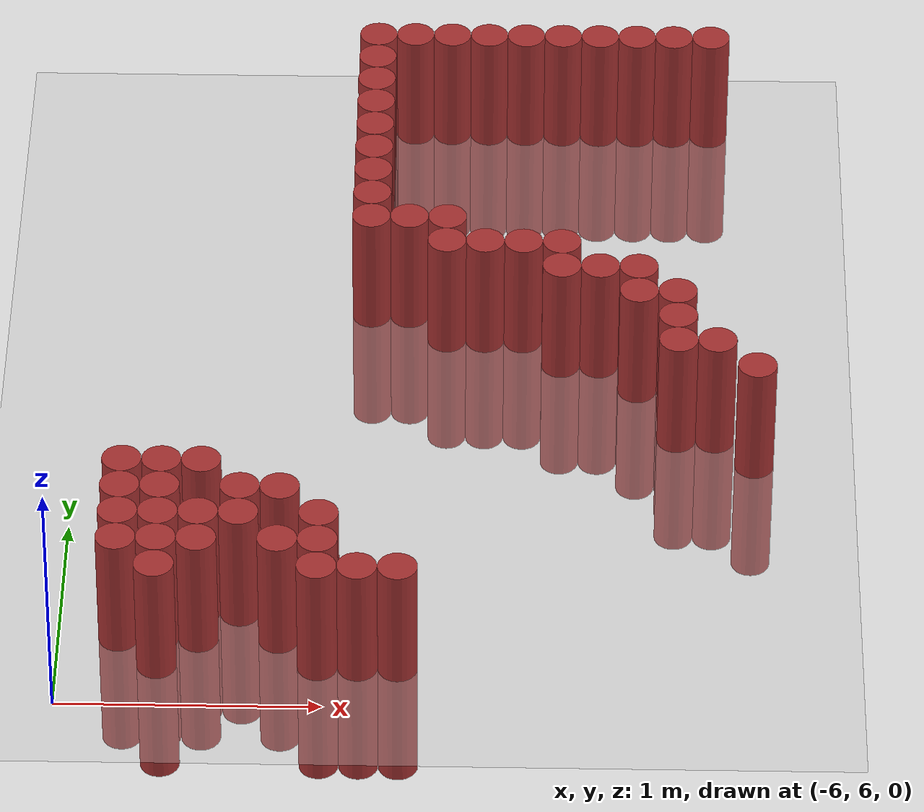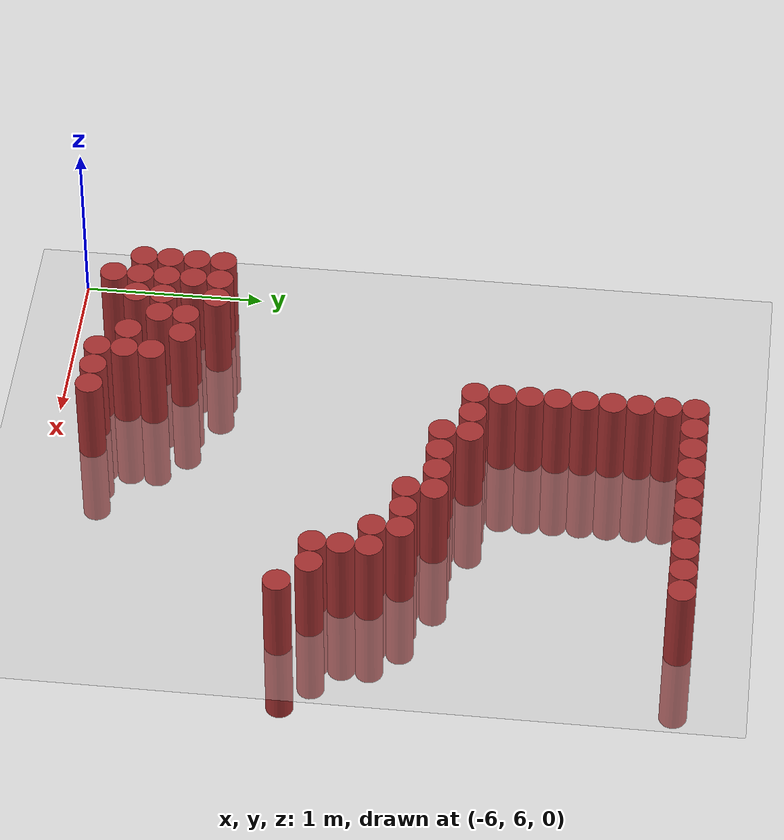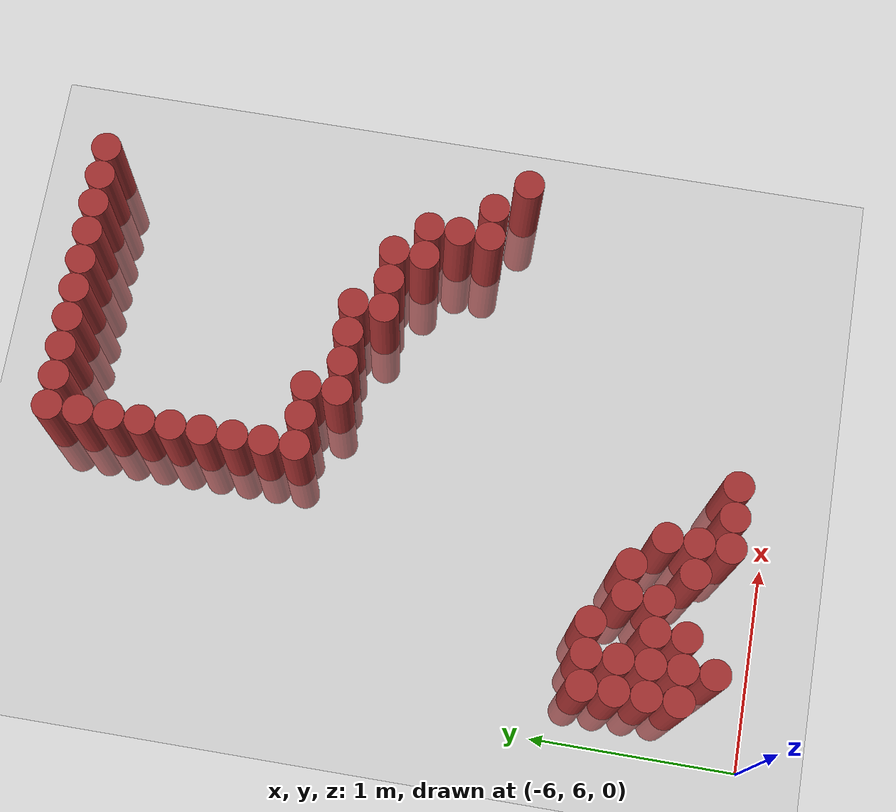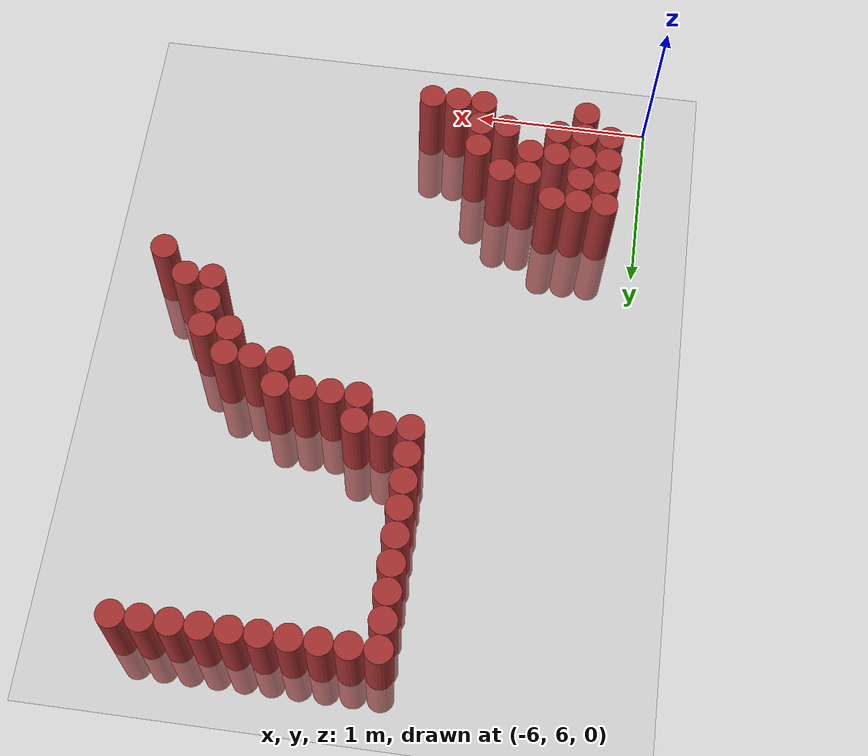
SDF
<sdf version="1.6">
 <world name="default">
  <model name="ground_plane">
   <static>1</static>
   <link name="link">
    <collision name="collision">
     <geometry><plane><normal>0 0 1</normal><size>100 100</size></plane></geometry>
     <surface><friction><ode><mu>100</mu><mu2>50</mu2></ode></friction></surface>
    </collision>
    <visual name="visual">
     <cast_shadows>0</cast_shadows>
     <geometry><plane><normal>0 0 1</normal><size>100 100</size></plane></geometry>
     <material>
      <script><uri>file://media/materials/scripts/gazebo.material</uri><name>Gazebo/Grey</name></script>
     </material>
    </visual>
   </link>
  </model>
  <model name="unit_cylinder_265">
   <static>1</static>
   <pose>-5.775000 6.375000 0.000000 0.000000 0.000000 0.000000</pose>
   <link name="link">
    <inertial>
     <mass>1</mass>
     <inertia><ixx>0.145833</ixx><ixy>0</ixy><ixz>0</ixz><iyy>0.145833</iyy><iyz>0</iyz><izz>0.125</izz></inertia>
    </inertial>
    <collision name="collision">
     <geometry><cylinder><radius>0.075000</radius><length>1</length></cylinder></geometry>
    </collision>
    <visual name="visual">
     <geometry><cylinder><radius>0.075000</radius><length>1</length></cylinder></geometry>
     <material>
      <ambient>0.648000 0.192000 0.192000 1</ambient>
      <diffuse>0.648000 0.192000 0.192000 1</diffuse>
     </material>
     <material>
      <script><name>Gazebo/Grey</name><uri>file://media/materials/scripts/gazebo.material</uri></script>
     </material>
    </visual>
   </link>
  </model>
  <model name="unit_cylinder_266">
   <static>1</static>
   <pose>-5.775000 6.525000 0.000000 0.000000 0.000000 0.000000</pose>
   <link name="link">
    <inertial>
     <mass>1</mass>
     <inertia><ixx>0.145833</ixx><ixy>0</ixy><ixz>0</ixz><iyy>0.145833</iyy><iyz>0</iyz><izz>0.125</izz></inertia>
    </inertial>
    <collision name="collision">
     <geometry><cylinder><radius>0.075000</radius><length>1</length></cylinder></geometry>
    </collision>
    <visual name="visual">
     <geometry><cylinder><radius>0.075000</radius><length>1</length></cylinder></geometry>
     <material>
      <ambient>0.648000 0.192000 0.192000 1</ambient>
      <diffuse>0.648000 0.192000 0.192000 1</diffuse>
     </material>
     <material>
      <script><name>Gazebo/Grey</name><uri>file://media/materials/scripts/gazebo.material</uri></script>
     </material>
    </visual>
   </link>
  </model>
  <model name="unit_cylinder_267">
   <static>1</static>
   <pose>-5.775000 6.675000 0.000000 0.000000 0.000000 0.000000</pose>
   <link name="link">
    <inertial>
     <mass>1</mass>
     <inertia><ixx>0.145833</ixx><ixy>0</ixy><ixz>0</ixz><iyy>0.145833</iyy><iyz>0</iyz><izz>0.125</izz></inertia>
    </inertial>
    <collision name="collision">
     <geometry><cylinder><radius>0.075000</radius><length>1</length></cylinder></geometry>
    </collision>
    <visual name="visual">
     <geometry><cylinder><radius>0.075000</radius><length>1</length></cylinder></geometry>
     <material>
      <ambient>0.648000 0.192000 0.192000 1</ambient>
      <diffuse>0.648000 0.192000 0.192000 1</diffuse>
     </material>
     <material>
      <script><name>Gazebo/Grey</name><uri>file://media/materials/scripts/gazebo.material</uri></script>
     </material>
    </visual>
   </link>
  </model>
  <model name="unit_cylinder_268">
   <static>1</static>
   <pose>-5.775000 6.825000 0.000000 0.000000 0.000000 0.000000</pose>
   <link name="link">
    <inertial>
     <mass>1</mass>
     <inertia><ixx>0.145833</ixx><ixy>0</ixy><ixz>0</ixz><iyy>0.145833</iyy><iyz>0</iyz><izz>0.125</izz></inertia>
    </inertial>
    <collision name="collision">
     <geometry><cylinder><radius>0.075000</radius><length>1</length></cylinder></geometry>
    </collision>
    <visual name="visual">
     <geometry><cylinder><radius>0.075000</radius><length>1</length></cylinder></geometry>
     <material>
      <ambient>0.648000 0.192000 0.192000 1</ambient>
      <diffuse>0.648000 0.192000 0.192000 1</diffuse>
     </material>
     <material>
      <script><name>Gazebo/Grey</name><uri>file://media/materials/scripts/gazebo.material</uri></script>
     </material>
    </visual>
   </link>
  </model>
  <model name="unit_cylinder_270">
   <static>1</static>
   <pose>-5.625000 6.225000 0.000000 0.000000 0.000000 0.000000</pose>
   <link name="link">
    <inertial>
     <mass>1</mass>
     <inertia><ixx>0.145833</ixx><ixy>0</ixy><ixz>0</ixz><iyy>0.145833</iyy><iyz>0</iyz><izz>0.125</izz></inertia>
    </inertial>
    <collision name="collision">
     <geometry><cylinder><radius>0.075000</radius><length>1</length></cylinder></geometry>
    </collision>
    <visual name="visual">
     <geometry><cylinder><radius>0.075000</radius><length>1</length></cylinder></geometry>
     <material>
      <ambient>0.648000 0.192000 0.192000 1</ambient>
      <diffuse>0.648000 0.192000 0.192000 1</diffuse>
     </material>
     <material>
      <script><name>Gazebo/Grey</name><uri>file://media/materials/scripts/gazebo.material</uri></script>
     </material>
    </visual>
   </link>
  </model>
  <model name="unit_cylinder_271">
   <static>1</static>
   <pose>-5.625000 6.375000 0.000000 0.000000 0.000000 0.000000</pose>
   <link name="link">
    <inertial>
     <mass>1</mass>
     <inertia><ixx>0.145833</ixx><ixy>0</ixy><ixz>0</ixz><iyy>0.145833</iyy><iyz>0</iyz><izz>0.125</izz></inertia>
    </inertial>
    <collision name="collision">
     <geometry><cylinder><radius>0.075000</radius><length>1</length></cylinder></geometry>
    </collision>
    <visual name="visual">
     <geometry><cylinder><radius>0.075000</radius><length>1</length></cylinder></geometry>
     <material>
      <ambient>0.648000 0.192000 0.192000 1</ambient>
      <diffuse>0.648000 0.192000 0.192000 1</diffuse>
     </material>
     <material>
      <script><name>Gazebo/Grey</name><uri>file://media/materials/scripts/gazebo.material</uri></script>
     </material>
    </visual>
   </link>
  </model>
  <model name="unit_cylinder_272">
   <static>1</static>
   <pose>-5.625000 6.525000 0.000000 0.000000 0.000000 0.000000</pose>
   <link name="link">
    <inertial>
     <mass>1</mass>
     <inertia><ixx>0.145833</ixx><ixy>0</ixy><ixz>0</ixz><iyy>0.145833</iyy><iyz>0</iyz><izz>0.125</izz></inertia>
    </inertial>
    <collision name="collision">
     <geometry><cylinder><radius>0.075000</radius><length>1</length></cylinder></geometry>
    </collision>
    <visual name="visual">
     <geometry><cylinder><radius>0.075000</radius><length>1</length></cylinder></geometry>
     <material>
      <ambient>0.648000 0.192000 0.192000 1</ambient>
      <diffuse>0.648000 0.192000 0.192000 1</diffuse>
     </material>
     <material>
      <script><name>Gazebo/Grey</name><uri>file://media/materials/scripts/gazebo.material</uri></script>
     </material>
    </visual>
   </link>
  </model>
  <model name="unit_cylinder_273">
   <static>1</static>
   <pose>-5.625000 6.675000 0.000000 0.000000 0.000000 0.000000</pose>
   <link name="link">
    <inertial>
     <mass>1</mass>
     <inertia><ixx>0.145833</ixx><ixy>0</ixy><ixz>0</ixz><iyy>0.145833</iyy><iyz>0</iyz><izz>0.125</izz></inertia>
    </inertial>
    <collision name="collision">
     <geometry><cylinder><radius>0.075000</radius><length>1</length></cylinder></geometry>
    </collision>
    <visual name="visual">
     <geometry><cylinder><radius>0.075000</radius><length>1</length></cylinder></geometry>
     <material>
      <ambient>0.648000 0.192000 0.192000 1</ambient>
      <diffuse>0.648000 0.192000 0.192000 1</diffuse>
     </material>
     <material>
      <script><name>Gazebo/Grey</name><uri>file://media/materials/scripts/gazebo.material</uri></script>
     </material>
    </visual>
   </link>
  </model>
  <model name="unit_cylinder_274">
   <static>1</static>
   <pose>-5.625000 6.825000 0.000000 0.000000 0.000000 0.000000</pose>
   <link name="link">
    <inertial>
     <mass>1</mass>
     <inertia><ixx>0.145833</ixx><ixy>0</ixy><ixz>0</ixz><iyy>0.145833</iyy><iyz>0</iyz><izz>0.125</izz></inertia>
    </inertial>
    <collision name="collision">
     <geometry><cylinder><radius>0.075000</radius><length>1</length></cylinder></geometry>
    </collision>
    <visual name="visual">
     <geometry><cylinder><radius>0.075000</radius><length>1</length></cylinder></geometry>
     <material>
      <ambient>0.648000 0.192000 0.192000 1</ambient>
      <diffuse>0.648000 0.192000 0.192000 1</diffuse>
     </material>
     <material>
      <script><name>Gazebo/Grey</name><uri>file://media/materials/scripts/gazebo.material</uri></script>
     </material>
    </visual>
   </link>
  </model>
  <model name="unit_cylinder_278">
   <static>1</static>
   <pose>-5.475000 6.375000 0.000000 0.000000 0.000000 0.000000</pose>
   <link name="link">
    <inertial>
     <mass>1</mass>
     <inertia><ixx>0.145833</ixx><ixy>0</ixy><ixz>0</ixz><iyy>0.145833</iyy><iyz>0</iyz><izz>0.125</izz></inertia>
    </inertial>
    <collision name="collision">
     <geometry><cylinder><radius>0.075000</radius><length>1</length></cylinder></geometry>
    </collision>
    <visual name="visual">
     <geometry><cylinder><radius>0.075000</radius><length>1</length></cylinder></geometry>
     <material>
      <ambient>0.648000 0.192000 0.192000 1</ambient>
      <diffuse>0.648000 0.192000 0.192000 1</diffuse>
     </material>
     <material>
      <script><name>Gazebo/Grey</name><uri>file://media/materials/scripts/gazebo.material</uri></script>
     </material>
    </visual>
   </link>
  </model>
  <model name="unit_cylinder_279">
   <static>1</static>
   <pose>-5.475000 6.525000 0.000000 0.000000 0.000000 0.000000</pose>
   <link name="link">
    <inertial>
     <mass>1</mass>
     <inertia><ixx>0.145833</ixx><ixy>0</ixy><ixz>0</ixz><iyy>0.145833</iyy><iyz>0</iyz><izz>0.125</izz></inertia>
    </inertial>
    <collision name="collision">
     <geometry><cylinder><radius>0.075000</radius><length>1</length></cylinder></geometry>
    </collision>
    <visual name="visual">
     <geometry><cylinder><radius>0.075000</radius><length>1</length></cylinder></geometry>
     <material>
      <ambient>0.648000 0.192000 0.192000 1</ambient>
      <diffuse>0.648000 0.192000 0.192000 1</diffuse>
     </material>
     <material>
      <script><name>Gazebo/Grey</name><uri>file://media/materials/scripts/gazebo.material</uri></script>
     </material>
    </visual>
   </link>
  </model>
  <model name="unit_cylinder_280">
   <static>1</static>
   <pose>-5.475000 6.825000 0.000000 0.000000 0.000000 0.000000</pose>
   <link name="link">
    <inertial>
     <mass>1</mass>
     <inertia><ixx>0.145833</ixx><ixy>0</ixy><ixz>0</ixz><iyy>0.145833</iyy><iyz>0</iyz><izz>0.125</izz></inertia>
    </inertial>
    <collision name="collision">
     <geometry><cylinder><radius>0.075000</radius><length>1</length></cylinder></geometry>
    </collision>
    <visual name="visual">
     <geometry><cylinder><radius>0.075000</radius><length>1</length></cylinder></geometry>
     <material>
      <ambient>0.648000 0.192000 0.192000 1</ambient>
      <diffuse>0.648000 0.192000 0.192000 1</diffuse>
     </material>
     <material>
      <script><name>Gazebo/Grey</name><uri>file://media/materials/scripts/gazebo.material</uri></script>
     </material>
    </visual>
   </link>
  </model>
  <model name="unit_cylinder_285">
   <static>1</static>
   <pose>-5.325000 6.525000 0.000000 0.000000 0.000000 0.000000</pose>
   <link name="link">
    <inertial>
     <mass>1</mass>
     <inertia><ixx>0.145833</ixx><ixy>0</ixy><ixz>0</ixz><iyy>0.145833</iyy><iyz>0</iyz><izz>0.125</izz></inertia>
    </inertial>
    <collision name="collision">
     <geometry><cylinder><radius>0.075000</radius><length>1</length></cylinder></geometry>
    </collision>
    <visual name="visual">
     <geometry><cylinder><radius>0.075000</radius><length>1</length></cylinder></geometry>
     <material>
      <ambient>0.648000 0.192000 0.192000 1</ambient>
      <diffuse>0.648000 0.192000 0.192000 1</diffuse>
     </material>
     <material>
      <script><name>Gazebo/Grey</name><uri>file://media/materials/scripts/gazebo.material</uri></script>
     </material>
    </visual>
   </link>
  </model>
  <model name="unit_cylinder_286">
   <static>1</static>
   <pose>-5.325000 6.675000 0.000000 0.000000 0.000000 0.000000</pose>
   <link name="link">
    <inertial>
     <mass>1</mass>
     <inertia><ixx>0.145833</ixx><ixy>0</ixy><ixz>0</ixz><iyy>0.145833</iyy><iyz>0</iyz><izz>0.125</izz></inertia>
    </inertial>
    <collision name="collision">
     <geometry><cylinder><radius>0.075000</radius><length>1</length></cylinder></geometry>
    </collision>
    <visual name="visual">
     <geometry><cylinder><radius>0.075000</radius><length>1</length></cylinder></geometry>
     <material>
      <ambient>0.648000 0.192000 0.192000 1</ambient>
      <diffuse>0.648000 0.192000 0.192000 1</diffuse>
     </material>
     <material>
      <script><name>Gazebo/Grey</name><uri>file://media/materials/scripts/gazebo.material</uri></script>
     </material>
    </visual>
   </link>
  </model>
  <model name="unit_cylinder_290">
   <static>1</static>
   <pose>-5.175000 6.375000 0.000000 0.000000 0.000000 0.000000</pose>
   <link name="link">
    <inertial>
     <mass>1</mass>
     <inertia><ixx>0.145833</ixx><ixy>0</ixy><ixz>0</ixz><iyy>0.145833</iyy><iyz>0</iyz><izz>0.125</izz></inertia>
    </inertial>
    <collision name="collision">
     <geometry><cylinder><radius>0.075000</radius><length>1</length></cylinder></geometry>
    </collision>
    <visual name="visual">
     <geometry><cylinder><radius>0.075000</radius><length>1</length></cylinder></geometry>
     <material>
      <ambient>0.648000 0.192000 0.192000 1</ambient>
      <diffuse>0.648000 0.192000 0.192000 1</diffuse>
     </material>
     <material>
      <script><name>Gazebo/Grey</name><uri>file://media/materials/scripts/gazebo.material</uri></script>
     </material>
    </visual>
   </link>
  </model>
  <model name="unit_cylinder_291">
   <static>1</static>
   <pose>-5.175000 6.675000 0.000000 0.000000 0.000000 0.000000</pose>
   <link name="link">
    <inertial>
     <mass>1</mass>
     <inertia><ixx>0.145833</ixx><ixy>0</ixy><ixz>0</ixz><iyy>0.145833</iyy><iyz>0</iyz><izz>0.125</izz></inertia>
    </inertial>
    <collision name="collision">
     <geometry><cylinder><radius>0.075000</radius><length>1</length></cylinder></geometry>
    </collision>
    <visual name="visual">
     <geometry><cylinder><radius>0.075000</radius><length>1</length></cylinder></geometry>
     <material>
      <ambient>0.648000 0.192000 0.192000 1</ambient>
      <diffuse>0.648000 0.192000 0.192000 1</diffuse>
     </material>
     <material>
      <script><name>Gazebo/Grey</name><uri>file://media/materials/scripts/gazebo.material</uri></script>
     </material>
    </visual>
   </link>
  </model>
  <model name="unit_cylinder_297">
   <static>1</static>
   <pose>-5.025000 6.225000 0.000000 0.000000 0.000000 0.000000</pose>
   <link name="link">
    <inertial>
     <mass>1</mass>
     <inertia><ixx>0.145833</ixx><ixy>0</ixy><ixz>0</ixz><iyy>0.145833</iyy><iyz>0</iyz><izz>0.125</izz></inertia>
    </inertial>
    <collision name="collision">
     <geometry><cylinder><radius>0.075000</radius><length>1</length></cylinder></geometry>
    </collision>
    <visual name="visual">
     <geometry><cylinder><radius>0.075000</radius><length>1</length></cylinder></geometry>
     <material>
      <ambient>0.648000 0.192000 0.192000 1</ambient>
      <diffuse>0.648000 0.192000 0.192000 1</diffuse>
     </material>
     <material>
      <script><name>Gazebo/Grey</name><uri>file://media/materials/scripts/gazebo.material</uri></script>
     </material>
    </visual>
   </link>
  </model>
  <model name="unit_cylinder_298">
   <static>1</static>
   <pose>-5.025000 6.375000 0.000000 0.000000 0.000000 0.000000</pose>
   <link name="link">
    <inertial>
     <mass>1</mass>
     <inertia><ixx>0.145833</ixx><ixy>0</ixy><ixz>0</ixz><iyy>0.145833</iyy><iyz>0</iyz><izz>0.125</izz></inertia>
    </inertial>
    <collision name="collision">
     <geometry><cylinder><radius>0.075000</radius><length>1</length></cylinder></geometry>
    </collision>
    <visual name="visual">
     <geometry><cylinder><radius>0.075000</radius><length>1</length></cylinder></geometry>
     <material>
      <ambient>0.648000 0.192000 0.192000 1</ambient>
      <diffuse>0.648000 0.192000 0.192000 1</diffuse>
     </material>
     <material>
      <script><name>Gazebo/Grey</name><uri>file://media/materials/scripts/gazebo.material</uri></script>
     </material>
    </visual>
   </link>
  </model>
  <model name="unit_cylinder_299">
   <static>1</static>
   <pose>-5.025000 6.525000 0.000000 0.000000 0.000000 0.000000</pose>
   <link name="link">
    <inertial>
     <mass>1</mass>
     <inertia><ixx>0.145833</ixx><ixy>0</ixy><ixz>0</ixz><iyy>0.145833</iyy><iyz>0</iyz><izz>0.125</izz></inertia>
    </inertial>
    <collision name="collision">
     <geometry><cylinder><radius>0.075000</radius><length>1</length></cylinder></geometry>
    </collision>
    <visual name="visual">
     <geometry><cylinder><radius>0.075000</radius><length>1</length></cylinder></geometry>
     <material>
      <ambient>0.648000 0.192000 0.192000 1</ambient>
      <diffuse>0.648000 0.192000 0.192000 1</diffuse>
     </material>
     <material>
      <script><name>Gazebo/Grey</name><uri>file://media/materials/scripts/gazebo.material</uri></script>
     </material>
    </visual>
   </link>
  </model>
  <model name="unit_cylinder_305">
   <static>1</static>
   <pose>-4.875000 6.225000 0.000000 0.000000 0.000000 0.000000</pose>
   <link name="link">
    <inertial>
     <mass>1</mass>
     <inertia><ixx>0.145833</ixx><ixy>0</ixy><ixz>0</ixz><iyy>0.145833</iyy><iyz>0</iyz><izz>0.125</izz></inertia>
    </inertial>
    <collision name="collision">
     <geometry><cylinder><radius>0.075000</radius><length>1</length></cylinder></geometry>
    </collision>
    <visual name="visual">
     <geometry><cylinder><radius>0.075000</radius><length>1</length></cylinder></geometry>
     <material>
      <ambient>0.648000 0.192000 0.192000 1</ambient>
      <diffuse>0.648000 0.192000 0.192000 1</diffuse>
     </material>
     <material>
      <script><name>Gazebo/Grey</name><uri>file://media/materials/scripts/gazebo.material</uri></script>
     </material>
    </visual>
   </link>
  </model>
  <model name="unit_cylinder_306">
   <static>1</static>
   <pose>-4.875000 8.325000 0.000000 0.000000 0.000000 0.000000</pose>
   <link name="link">
    <inertial>
     <mass>1</mass>
     <inertia><ixx>0.145833</ixx><ixy>0</ixy><ixz>0</ixz><iyy>0.145833</iyy><iyz>0</iyz><izz>0.125</izz></inertia>
    </inertial>
    <collision name="collision">
     <geometry><cylinder><radius>0.075000</radius><length>1</length></cylinder></geometry>
    </collision>
    <visual name="visual">
     <geometry><cylinder><radius>0.075000</radius><length>1</length></cylinder></geometry>
     <material>
      <ambient>0.648000 0.192000 0.192000 1</ambient>
      <diffuse>0.648000 0.192000 0.192000 1</diffuse>
     </material>
     <material>
      <script><name>Gazebo/Grey</name><uri>file://media/materials/scripts/gazebo.material</uri></script>
     </material>
    </visual>
   </link>
  </model>
  <model name="unit_cylinder_307">
   <static>1</static>
   <pose>-4.875000 8.475000 0.000000 0.000000 0.000000 0.000000</pose>
   <link name="link">
    <inertial>
     <mass>1</mass>
     <inertia><ixx>0.145833</ixx><ixy>0</ixy><ixz>0</ixz><iyy>0.145833</iyy><iyz>0</iyz><izz>0.125</izz></inertia>
    </inertial>
    <collision name="collision">
     <geometry><cylinder><radius>0.075000</radius><length>1</length></cylinder></geometry>
    </collision>
    <visual name="visual">
     <geometry><cylinder><radius>0.075000</radius><length>1</length></cylinder></geometry>
     <material>
      <ambient>0.648000 0.192000 0.192000 1</ambient>
      <diffuse>0.648000 0.192000 0.192000 1</diffuse>
     </material>
     <material>
      <script><name>Gazebo/Grey</name><uri>file://media/materials/scripts/gazebo.material</uri></script>
     </material>
    </visual>
   </link>
  </model>
  <model name="unit_cylinder_308">
   <static>1</static>
   <pose>-4.875000 8.625000 0.000000 0.000000 0.000000 0.000000</pose>
   <link name="link">
    <inertial>
     <mass>1</mass>
     <inertia><ixx>0.145833</ixx><ixy>0</ixy><ixz>0</ixz><iyy>0.145833</iyy><iyz>0</iyz><izz>0.125</izz></inertia>
    </inertial>
    <collision name="collision">
     <geometry><cylinder><radius>0.075000</radius><length>1</length></cylinder></geometry>
    </collision>
    <visual name="visual">
     <geometry><cylinder><radius>0.075000</radius><length>1</length></cylinder></geometry>
     <material>
      <ambient>0.648000 0.192000 0.192000 1</ambient>
      <diffuse>0.648000 0.192000 0.192000 1</diffuse>
     </material>
     <material>
      <script><name>Gazebo/Grey</name><uri>file://media/materials/scripts/gazebo.material</uri></script>
     </material>
    </visual>
   </link>
  </model>
  <model name="unit_cylinder_309">
   <static>1</static>
   <pose>-4.875000 8.775000 0.000000 0.000000 0.000000 0.000000</pose>
   <link name="link">
    <inertial>
     <mass>1</mass>
     <inertia><ixx>0.145833</ixx><ixy>0</ixy><ixz>0</ixz><iyy>0.145833</iyy><iyz>0</iyz><izz>0.125</izz></inertia>
    </inertial>
    <collision name="collision">
     <geometry><cylinder><radius>0.075000</radius><length>1</length></cylinder></geometry>
    </collision>
    <visual name="visual">
     <geometry><cylinder><radius>0.075000</radius><length>1</length></cylinder></geometry>
     <material>
      <ambient>0.648000 0.192000 0.192000 1</ambient>
      <diffuse>0.648000 0.192000 0.192000 1</diffuse>
     </material>
     <material>
      <script><name>Gazebo/Grey</name><uri>file://media/materials/scripts/gazebo.material</uri></script>
     </material>
    </visual>
   </link>
  </model>
  <model name="unit_cylinder_310">
   <static>1</static>
   <pose>-4.875000 8.925000 0.000000 0.000000 0.000000 0.000000</pose>
   <link name="link">
    <inertial>
     <mass>1</mass>
     <inertia><ixx>0.145833</ixx><ixy>0</ixy><ixz>0</ixz><iyy>0.145833</iyy><iyz>0</iyz><izz>0.125</izz></inertia>
    </inertial>
    <collision name="collision">
     <geometry><cylinder><radius>0.075000</radius><length>1</length></cylinder></geometry>
    </collision>
    <visual name="visual">
     <geometry><cylinder><radius>0.075000</radius><length>1</length></cylinder></geometry>
     <material>
      <ambient>0.648000 0.192000 0.192000 1</ambient>
      <diffuse>0.648000 0.192000 0.192000 1</diffuse>
     </material>
     <material>
      <script><name>Gazebo/Grey</name><uri>file://media/materials/scripts/gazebo.material</uri></script>
     </material>
    </visual>
   </link>
  </model>
  <model name="unit_cylinder_311">
   <static>1</static>
   <pose>-4.875000 9.075000 0.000000 0.000000 0.000000 0.000000</pose>
   <link name="link">
    <inertial>
     <mass>1</mass>
     <inertia><ixx>0.145833</ixx><ixy>0</ixy><ixz>0</ixz><iyy>0.145833</iyy><iyz>0</iyz><izz>0.125</izz></inertia>
    </inertial>
    <collision name="collision">
     <geometry><cylinder><radius>0.075000</radius><length>1</length></cylinder></geometry>
    </collision>
    <visual name="visual">
     <geometry><cylinder><radius>0.075000</radius><length>1</length></cylinder></geometry>
     <material>
      <ambient>0.648000 0.192000 0.192000 1</ambient>
      <diffuse>0.648000 0.192000 0.192000 1</diffuse>
     </material>
     <material>
      <script><name>Gazebo/Grey</name><uri>file://media/materials/scripts/gazebo.material</uri></script>
     </material>
    </visual>
   </link>
  </model>
  <model name="unit_cylinder_312">
   <static>1</static>
   <pose>-4.875000 9.225000 0.000000 0.000000 0.000000 0.000000</pose>
   <link name="link">
    <inertial>
     <mass>1</mass>
     <inertia><ixx>0.145833</ixx><ixy>0</ixy><ixz>0</ixz><iyy>0.145833</iyy><iyz>0</iyz><izz>0.125</izz></inertia>
    </inertial>
    <collision name="collision">
     <geometry><cylinder><radius>0.075000</radius><length>1</length></cylinder></geometry>
    </collision>
    <visual name="visual">
     <geometry><cylinder><radius>0.075000</radius><length>1</length></cylinder></geometry>
     <material>
      <ambient>0.648000 0.192000 0.192000 1</ambient>
      <diffuse>0.648000 0.192000 0.192000 1</diffuse>
     </material>
     <material>
      <script><name>Gazebo/Grey</name><uri>file://media/materials/scripts/gazebo.material</uri></script>
     </material>
    </visual>
   </link>
  </model>
  <model name="unit_cylinder_313">
   <static>1</static>
   <pose>-4.875000 9.375000 0.000000 0.000000 0.000000 0.000000</pose>
   <link name="link">
    <inertial>
     <mass>1</mass>
     <inertia><ixx>0.145833</ixx><ixy>0</ixy><ixz>0</ixz><iyy>0.145833</iyy><iyz>0</iyz><izz>0.125</izz></inertia>
    </inertial>
    <collision name="collision">
     <geometry><cylinder><radius>0.075000</radius><length>1</length></cylinder></geometry>
    </collision>
    <visual name="visual">
     <geometry><cylinder><radius>0.075000</radius><length>1</length></cylinder></geometry>
     <material>
      <ambient>0.648000 0.192000 0.192000 1</ambient>
      <diffuse>0.648000 0.192000 0.192000 1</diffuse>
     </material>
     <material>
      <script><name>Gazebo/Grey</name><uri>file://media/materials/scripts/gazebo.material</uri></script>
     </material>
    </visual>
   </link>
  </model>
  <model name="unit_cylinder_314">
   <static>1</static>
   <pose>-4.875000 9.525000 0.000000 0.000000 0.000000 0.000000</pose>
   <link name="link">
    <inertial>
     <mass>1</mass>
     <inertia><ixx>0.145833</ixx><ixy>0</ixy><ixz>0</ixz><iyy>0.145833</iyy><iyz>0</iyz><izz>0.125</izz></inertia>
    </inertial>
    <collision name="collision">
     <geometry><cylinder><radius>0.075000</radius><length>1</length></cylinder></geometry>
    </collision>
    <visual name="visual">
     <geometry><cylinder><radius>0.075000</radius><length>1</length></cylinder></geometry>
     <material>
      <ambient>0.648000 0.192000 0.192000 1</ambient>
      <diffuse>0.648000 0.192000 0.192000 1</diffuse>
     </material>
     <material>
      <script><name>Gazebo/Grey</name><uri>file://media/materials/scripts/gazebo.material</uri></script>
     </material>
    </visual>
   </link>
  </model>
  <model name="unit_cylinder_318">
   <static>1</static>
   <pose>-4.725000 6.225000 0.000000 0.000000 0.000000 0.000000</pose>
   <link name="link">
    <inertial>
     <mass>1</mass>
     <inertia><ixx>0.145833</ixx><ixy>0</ixy><ixz>0</ixz><iyy>0.145833</iyy><iyz>0</iyz><izz>0.125</izz></inertia>
    </inertial>
    <collision name="collision">
     <geometry><cylinder><radius>0.075000</radius><length>1</length></cylinder></geometry>
    </collision>
    <visual name="visual">
     <geometry><cylinder><radius>0.075000</radius><length>1</length></cylinder></geometry>
     <material>
      <ambient>0.648000 0.192000 0.192000 1</ambient>
      <diffuse>0.648000 0.192000 0.192000 1</diffuse>
     </material>
     <material>
      <script><name>Gazebo/Grey</name><uri>file://media/materials/scripts/gazebo.material</uri></script>
     </material>
    </visual>
   </link>
  </model>
  <model name="unit_cylinder_319">
   <static>1</static>
   <pose>-4.725000 8.325000 0.000000 0.000000 0.000000 0.000000</pose>
   <link name="link">
    <inertial>
     <mass>1</mass>
     <inertia><ixx>0.145833</ixx><ixy>0</ixy><ixz>0</ixz><iyy>0.145833</iyy><iyz>0</iyz><izz>0.125</izz></inertia>
    </inertial>
    <collision name="collision">
     <geometry><cylinder><radius>0.075000</radius><length>1</length></cylinder></geometry>
    </collision>
    <visual name="visual">
     <geometry><cylinder><radius>0.075000</radius><length>1</length></cylinder></geometry>
     <material>
      <ambient>0.648000 0.192000 0.192000 1</ambient>
      <diffuse>0.648000 0.192000 0.192000 1</diffuse>
     </material>
     <material>
      <script><name>Gazebo/Grey</name><uri>file://media/materials/scripts/gazebo.material</uri></script>
     </material>
    </visual>
   </link>
  </model>
  <model name="unit_cylinder_320">
   <static>1</static>
   <pose>-4.725000 9.525000 0.000000 0.000000 0.000000 0.000000</pose>
   <link name="link">
    <inertial>
     <mass>1</mass>
     <inertia><ixx>0.145833</ixx><ixy>0</ixy><ixz>0</ixz><iyy>0.145833</iyy><iyz>0</iyz><izz>0.125</izz></inertia>
    </inertial>
    <collision name="collision">
     <geometry><cylinder><radius>0.075000</radius><length>1</length></cylinder></geometry>
    </collision>
    <visual name="visual">
     <geometry><cylinder><radius>0.075000</radius><length>1</length></cylinder></geometry>
     <material>
      <ambient>0.648000 0.192000 0.192000 1</ambient>
      <diffuse>0.648000 0.192000 0.192000 1</diffuse>
     </material>
     <material>
      <script><name>Gazebo/Grey</name><uri>file://media/materials/scripts/gazebo.material</uri></script>
     </material>
    </visual>
   </link>
  </model>
  <model name="unit_cylinder_323">
   <static>1</static>
   <pose>-4.575000 8.175000 0.000000 0.000000 0.000000 0.000000</pose>
   <link name="link">
    <inertial>
     <mass>1</mass>
     <inertia><ixx>0.145833</ixx><ixy>0</ixy><ixz>0</ixz><iyy>0.145833</iyy><iyz>0</iyz><izz>0.125</izz></inertia>
    </inertial>
    <collision name="collision">
     <geometry><cylinder><radius>0.075000</radius><length>1</length></cylinder></geometry>
    </collision>
    <visual name="visual">
     <geometry><cylinder><radius>0.075000</radius><length>1</length></cylinder></geometry>
     <material>
      <ambient>0.648000 0.192000 0.192000 1</ambient>
      <diffuse>0.648000 0.192000 0.192000 1</diffuse>
     </material>
     <material>
      <script><name>Gazebo/Grey</name><uri>file://media/materials/scripts/gazebo.material</uri></script>
     </material>
    </visual>
   </link>
  </model>
  <model name="unit_cylinder_324">
   <static>1</static>
   <pose>-4.575000 8.325000 0.000000 0.000000 0.000000 0.000000</pose>
   <link name="link">
    <inertial>
     <mass>1</mass>
     <inertia><ixx>0.145833</ixx><ixy>0</ixy><ixz>0</ixz><iyy>0.145833</iyy><iyz>0</iyz><izz>0.125</izz></inertia>
    </inertial>
    <collision name="collision">
     <geometry><cylinder><radius>0.075000</radius><length>1</length></cylinder></geometry>
    </collision>
    <visual name="visual">
     <geometry><cylinder><radius>0.075000</radius><length>1</length></cylinder></geometry>
     <material>
      <ambient>0.648000 0.192000 0.192000 1</ambient>
      <diffuse>0.648000 0.192000 0.192000 1</diffuse>
     </material>
     <material>
      <script><name>Gazebo/Grey</name><uri>file://media/materials/scripts/gazebo.material</uri></script>
     </material>
    </visual>
   </link>
  </model>
  <model name="unit_cylinder_325">
   <static>1</static>
   <pose>-4.575000 9.525000 0.000000 0.000000 0.000000 0.000000</pose>
   <link name="link">
    <inertial>
     <mass>1</mass>
     <inertia><ixx>0.145833</ixx><ixy>0</ixy><ixz>0</ixz><iyy>0.145833</iyy><iyz>0</iyz><izz>0.125</izz></inertia>
    </inertial>
    <collision name="collision">
     <geometry><cylinder><radius>0.075000</radius><length>1</length></cylinder></geometry>
    </collision>
    <visual name="visual">
     <geometry><cylinder><radius>0.075000</radius><length>1</length></cylinder></geometry>
     <material>
      <ambient>0.648000 0.192000 0.192000 1</ambient>
      <diffuse>0.648000 0.192000 0.192000 1</diffuse>
     </material>
     <material>
      <script><name>Gazebo/Grey</name><uri>file://media/materials/scripts/gazebo.material</uri></script>
     </material>
    </visual>
   </link>
  </model>
  <model name="unit_cylinder_326">
   <static>1</static>
   <pose>-4.425000 8.175000 0.000000 0.000000 0.000000 0.000000</pose>
   <link name="link">
    <inertial>
     <mass>1</mass>
     <inertia><ixx>0.145833</ixx><ixy>0</ixy><ixz>0</ixz><iyy>0.145833</iyy><iyz>0</iyz><izz>0.125</izz></inertia>
    </inertial>
    <collision name="collision">
     <geometry><cylinder><radius>0.075000</radius><length>1</length></cylinder></geometry>
    </collision>
    <visual name="visual">
     <geometry><cylinder><radius>0.075000</radius><length>1</length></cylinder></geometry>
     <material>
      <ambient>0.648000 0.192000 0.192000 1</ambient>
      <diffuse>0.648000 0.192000 0.192000 1</diffuse>
     </material>
     <material>
      <script><name>Gazebo/Grey</name><uri>file://media/materials/scripts/gazebo.material</uri></script>
     </material>
    </visual>
   </link>
  </model>
  <model name="unit_cylinder_327">
   <static>1</static>
   <pose>-4.425000 9.525000 0.000000 0.000000 0.000000 0.000000</pose>
   <link name="link">
    <inertial>
     <mass>1</mass>
     <inertia><ixx>0.145833</ixx><ixy>0</ixy><ixz>0</ixz><iyy>0.145833</iyy><iyz>0</iyz><izz>0.125</izz></inertia>
    </inertial>
    <collision name="collision">
     <geometry><cylinder><radius>0.075000</radius><length>1</length></cylinder></geometry>
    </collision>
    <visual name="visual">
     <geometry><cylinder><radius>0.075000</radius><length>1</length></cylinder></geometry>
     <material>
      <ambient>0.648000 0.192000 0.192000 1</ambient>
      <diffuse>0.648000 0.192000 0.192000 1</diffuse>
     </material>
     <material>
      <script><name>Gazebo/Grey</name><uri>file://media/materials/scripts/gazebo.material</uri></script>
     </material>
    </visual>
   </link>
  </model>
  <model name="unit_cylinder_328">
   <static>1</static>
   <pose>-4.275000 8.175000 0.000000 0.000000 0.000000 0.000000</pose>
   <link name="link">
    <inertial>
     <mass>1</mass>
     <inertia><ixx>0.145833</ixx><ixy>0</ixy><ixz>0</ixz><iyy>0.145833</iyy><iyz>0</iyz><izz>0.125</izz></inertia>
    </inertial>
    <collision name="collision">
     <geometry><cylinder><radius>0.075000</radius><length>1</length></cylinder></geometry>
    </collision>
    <visual name="visual">
     <geometry><cylinder><radius>0.075000</radius><length>1</length></cylinder></geometry>
     <material>
      <ambient>0.648000 0.192000 0.192000 1</ambient>
      <diffuse>0.648000 0.192000 0.192000 1</diffuse>
     </material>
     <material>
      <script><name>Gazebo/Grey</name><uri>file://media/materials/scripts/gazebo.material</uri></script>
     </material>
    </visual>
   </link>
  </model>
  <model name="unit_cylinder_329">
   <static>1</static>
   <pose>-4.275000 9.525000 0.000000 0.000000 0.000000 0.000000</pose>
   <link name="link">
    <inertial>
     <mass>1</mass>
     <inertia><ixx>0.145833</ixx><ixy>0</ixy><ixz>0</ixz><iyy>0.145833</iyy><iyz>0</iyz><izz>0.125</izz></inertia>
    </inertial>
    <collision name="collision">
     <geometry><cylinder><radius>0.075000</radius><length>1</length></cylinder></geometry>
    </collision>
    <visual name="visual">
     <geometry><cylinder><radius>0.075000</radius><length>1</length></cylinder></geometry>
     <material>
      <ambient>0.648000 0.192000 0.192000 1</ambient>
      <diffuse>0.648000 0.192000 0.192000 1</diffuse>
     </material>
     <material>
      <script><name>Gazebo/Grey</name><uri>file://media/materials/scripts/gazebo.material</uri></script>
     </material>
    </visual>
   </link>
  </model>
  <model name="unit_cylinder_330">
   <static>1</static>
   <pose>-4.125000 8.025000 0.000000 0.000000 0.000000 0.000000</pose>
   <link name="link">
    <inertial>
     <mass>1</mass>
     <inertia><ixx>0.145833</ixx><ixy>0</ixy><ixz>0</ixz><iyy>0.145833</iyy><iyz>0</iyz><izz>0.125</izz></inertia>
    </inertial>
    <collision name="collision">
     <geometry><cylinder><radius>0.075000</radius><length>1</length></cylinder></geometry>
    </collision>
    <visual name="visual">
     <geometry><cylinder><radius>0.075000</radius><length>1</length></cylinder></geometry>
     <material>
      <ambient>0.648000 0.192000 0.192000 1</ambient>
      <diffuse>0.648000 0.192000 0.192000 1</diffuse>
     </material>
     <material>
      <script><name>Gazebo/Grey</name><uri>file://media/materials/scripts/gazebo.material</uri></script>
     </material>
    </visual>
   </link>
  </model>
  <model name="unit_cylinder_331">
   <static>1</static>
   <pose>-4.125000 8.175000 0.000000 0.000000 0.000000 0.000000</pose>
   <link name="link">
    <inertial>
     <mass>1</mass>
     <inertia><ixx>0.145833</ixx><ixy>0</ixy><ixz>0</ixz><iyy>0.145833</iyy><iyz>0</iyz><izz>0.125</izz></inertia>
    </inertial>
    <collision name="collision">
     <geometry><cylinder><radius>0.075000</radius><length>1</length></cylinder></geometry>
    </collision>
    <visual name="visual">
     <geometry><cylinder><radius>0.075000</radius><length>1</length></cylinder></geometry>
     <material>
      <ambient>0.648000 0.192000 0.192000 1</ambient>
      <diffuse>0.648000 0.192000 0.192000 1</diffuse>
     </material>
     <material>
      <script><name>Gazebo/Grey</name><uri>file://media/materials/scripts/gazebo.material</uri></script>
     </material>
    </visual>
   </link>
  </model>
  <model name="unit_cylinder_332">
   <static>1</static>
   <pose>-4.125000 9.525000 0.000000 0.000000 0.000000 0.000000</pose>
   <link name="link">
    <inertial>
     <mass>1</mass>
     <inertia><ixx>0.145833</ixx><ixy>0</ixy><ixz>0</ixz><iyy>0.145833</iyy><iyz>0</iyz><izz>0.125</izz></inertia>
    </inertial>
    <collision name="collision">
     <geometry><cylinder><radius>0.075000</radius><length>1</length></cylinder></geometry>
    </collision>
    <visual name="visual">
     <geometry><cylinder><radius>0.075000</radius><length>1</length></cylinder></geometry>
     <material>
      <ambient>0.648000 0.192000 0.192000 1</ambient>
      <diffuse>0.648000 0.192000 0.192000 1</diffuse>
     </material>
     <material>
      <script><name>Gazebo/Grey</name><uri>file://media/materials/scripts/gazebo.material</uri></script>
     </material>
    </visual>
   </link>
  </model>
  <model name="unit_cylinder_333">
   <static>1</static>
   <pose>-3.975000 8.025000 0.000000 0.000000 0.000000 0.000000</pose>
   <link name="link">
    <inertial>
     <mass>1</mass>
     <inertia><ixx>0.145833</ixx><ixy>0</ixy><ixz>0</ixz><iyy>0.145833</iyy><iyz>0</iyz><izz>0.125</izz></inertia>
    </inertial>
    <collision name="collision">
     <geometry><cylinder><radius>0.075000</radius><length>1</length></cylinder></geometry>
    </collision>
    <visual name="visual">
     <geometry><cylinder><radius>0.075000</radius><length>1</length></cylinder></geometry>
     <material>
      <ambient>0.648000 0.192000 0.192000 1</ambient>
      <diffuse>0.648000 0.192000 0.192000 1</diffuse>
     </material>
     <material>
      <script><name>Gazebo/Grey</name><uri>file://media/materials/scripts/gazebo.material</uri></script>
     </material>
    </visual>
   </link>
  </model>
  <model name="unit_cylinder_334">
   <static>1</static>
   <pose>-3.975000 9.525000 0.000000 0.000000 0.000000 0.000000</pose>
   <link name="link">
    <inertial>
     <mass>1</mass>
     <inertia><ixx>0.145833</ixx><ixy>0</ixy><ixz>0</ixz><iyy>0.145833</iyy><iyz>0</iyz><izz>0.125</izz></inertia>
    </inertial>
    <collision name="collision">
     <geometry><cylinder><radius>0.075000</radius><length>1</length></cylinder></geometry>
    </collision>
    <visual name="visual">
     <geometry><cylinder><radius>0.075000</radius><length>1</length></cylinder></geometry>
     <material>
      <ambient>0.648000 0.192000 0.192000 1</ambient>
      <diffuse>0.648000 0.192000 0.192000 1</diffuse>
     </material>
     <material>
      <script><name>Gazebo/Grey</name><uri>file://media/materials/scripts/gazebo.material</uri></script>
     </material>
    </visual>
   </link>
  </model>
  <model name="unit_cylinder_335">
   <static>1</static>
   <pose>-3.825000 7.875000 0.000000 0.000000 0.000000 0.000000</pose>
   <link name="link">
    <inertial>
     <mass>1</mass>
     <inertia><ixx>0.145833</ixx><ixy>0</ixy><ixz>0</ixz><iyy>0.145833</iyy><iyz>0</iyz><izz>0.125</izz></inertia>
    </inertial>
    <collision name="collision">
     <geometry><cylinder><radius>0.075000</radius><length>1</length></cylinder></geometry>
    </collision>
    <visual name="visual">
     <geometry><cylinder><radius>0.075000</radius><length>1</length></cylinder></geometry>
     <material>
      <ambient>0.648000 0.192000 0.192000 1</ambient>
      <diffuse>0.648000 0.192000 0.192000 1</diffuse>
     </material>
     <material>
      <script><name>Gazebo/Grey</name><uri>file://media/materials/scripts/gazebo.material</uri></script>
     </material>
    </visual>
   </link>
  </model>
  <model name="unit_cylinder_336">
   <static>1</static>
   <pose>-3.825000 8.025000 0.000000 0.000000 0.000000 0.000000</pose>
   <link name="link">
    <inertial>
     <mass>1</mass>
     <inertia><ixx>0.145833</ixx><ixy>0</ixy><ixz>0</ixz><iyy>0.145833</iyy><iyz>0</iyz><izz>0.125</izz></inertia>
    </inertial>
    <collision name="collision">
     <geometry><cylinder><radius>0.075000</radius><length>1</length></cylinder></geometry>
    </collision>
    <visual name="visual">
     <geometry><cylinder><radius>0.075000</radius><length>1</length></cylinder></geometry>
     <material>
      <ambient>0.648000 0.192000 0.192000 1</ambient>
      <diffuse>0.648000 0.192000 0.192000 1</diffuse>
     </material>
     <material>
      <script><name>Gazebo/Grey</name><uri>file://media/materials/scripts/gazebo.material</uri></script>
     </material>
    </visual>
   </link>
  </model>
  <model name="unit_cylinder_337">
   <static>1</static>
   <pose>-3.825000 9.525000 0.000000 0.000000 0.000000 0.000000</pose>
   <link name="link">
    <inertial>
     <mass>1</mass>
     <inertia><ixx>0.145833</ixx><ixy>0</ixy><ixz>0</ixz><iyy>0.145833</iyy><iyz>0</iyz><izz>0.125</izz></inertia>
    </inertial>
    <collision name="collision">
     <geometry><cylinder><radius>0.075000</radius><length>1</length></cylinder></geometry>
    </collision>
    <visual name="visual">
     <geometry><cylinder><radius>0.075000</radius><length>1</length></cylinder></geometry>
     <material>
      <ambient>0.648000 0.192000 0.192000 1</ambient>
      <diffuse>0.648000 0.192000 0.192000 1</diffuse>
     </material>
     <material>
      <script><name>Gazebo/Grey</name><uri>file://media/materials/scripts/gazebo.material</uri></script>
     </material>
    </visual>
   </link>
  </model>
  <model name="unit_cylinder_338">
   <static>1</static>
   <pose>-3.675000 7.575000 0.000000 0.000000 0.000000 0.000000</pose>
   <link name="link">
    <inertial>
     <mass>1</mass>
     <inertia><ixx>0.145833</ixx><ixy>0</ixy><ixz>0</ixz><iyy>0.145833</iyy><iyz>0</iyz><izz>0.125</izz></inertia>
    </inertial>
    <collision name="collision">
     <geometry><cylinder><radius>0.075000</radius><length>1</length></cylinder></geometry>
    </collision>
    <visual name="visual">
     <geometry><cylinder><radius>0.075000</radius><length>1</length></cylinder></geometry>
     <material>
      <ambient>0.648000 0.192000 0.192000 1</ambient>
      <diffuse>0.648000 0.192000 0.192000 1</diffuse>
     </material>
     <material>
      <script><name>Gazebo/Grey</name><uri>file://media/materials/scripts/gazebo.material</uri></script>
     </material>
    </visual>
   </link>
  </model>
  <model name="unit_cylinder_339">
   <static>1</static>
   <pose>-3.675000 7.725000 0.000000 0.000000 0.000000 0.000000</pose>
   <link name="link">
    <inertial>
     <mass>1</mass>
     <inertia><ixx>0.145833</ixx><ixy>0</ixy><ixz>0</ixz><iyy>0.145833</iyy><iyz>0</iyz><izz>0.125</izz></inertia>
    </inertial>
    <collision name="collision">
     <geometry><cylinder><radius>0.075000</radius><length>1</length></cylinder></geometry>
    </collision>
    <visual name="visual">
     <geometry><cylinder><radius>0.075000</radius><length>1</length></cylinder></geometry>
     <material>
      <ambient>0.648000 0.192000 0.192000 1</ambient>
      <diffuse>0.648000 0.192000 0.192000 1</diffuse>
     </material>
     <material>
      <script><name>Gazebo/Grey</name><uri>file://media/materials/scripts/gazebo.material</uri></script>
     </material>
    </visual>
   </link>
  </model>
  <model name="unit_cylinder_340">
   <static>1</static>
   <pose>-3.675000 7.875000 0.000000 0.000000 0.000000 0.000000</pose>
   <link name="link">
    <inertial>
     <mass>1</mass>
     <inertia><ixx>0.145833</ixx><ixy>0</ixy><ixz>0</ixz><iyy>0.145833</iyy><iyz>0</iyz><izz>0.125</izz></inertia>
    </inertial>
    <collision name="collision">
     <geometry><cylinder><radius>0.075000</radius><length>1</length></cylinder></geometry>
    </collision>
    <visual name="visual">
     <geometry><cylinder><radius>0.075000</radius><length>1</length></cylinder></geometry>
     <material>
      <ambient>0.648000 0.192000 0.192000 1</ambient>
      <diffuse>0.648000 0.192000 0.192000 1</diffuse>
     </material>
     <material>
      <script><name>Gazebo/Grey</name><uri>file://media/materials/scripts/gazebo.material</uri></script>
     </material>
    </visual>
   </link>
  </model>
  <model name="unit_cylinder_341">
   <static>1</static>
   <pose>-3.675000 9.525000 0.000000 0.000000 0.000000 0.000000</pose>
   <link name="link">
    <inertial>
     <mass>1</mass>
     <inertia><ixx>0.145833</ixx><ixy>0</ixy><ixz>0</ixz><iyy>0.145833</iyy><iyz>0</iyz><izz>0.125</izz></inertia>
    </inertial>
    <collision name="collision">
     <geometry><cylinder><radius>0.075000</radius><length>1</length></cylinder></geometry>
    </collision>
    <visual name="visual">
     <geometry><cylinder><radius>0.075000</radius><length>1</length></cylinder></geometry>
     <material>
      <ambient>0.648000 0.192000 0.192000 1</ambient>
      <diffuse>0.648000 0.192000 0.192000 1</diffuse>
     </material>
     <material>
      <script><name>Gazebo/Grey</name><uri>file://media/materials/scripts/gazebo.material</uri></script>
     </material>
    </visual>
   </link>
  </model>
  <model name="unit_cylinder_342">
   <static>1</static>
   <pose>-3.525000 7.575000 0.000000 0.000000 0.000000 0.000000</pose>
   <link name="link">
    <inertial>
     <mass>1</mass>
     <inertia><ixx>0.145833</ixx><ixy>0</ixy><ixz>0</ixz><iyy>0.145833</iyy><iyz>0</iyz><izz>0.125</izz></inertia>
    </inertial>
    <collision name="collision">
     <geometry><cylinder><radius>0.075000</radius><length>1</length></cylinder></geometry>
    </collision>
    <visual name="visual">
     <geometry><cylinder><radius>0.075000</radius><length>1</length></cylinder></geometry>
     <material>
      <ambient>0.648000 0.192000 0.192000 1</ambient>
      <diffuse>0.648000 0.192000 0.192000 1</diffuse>
     </material>
     <material>
      <script><name>Gazebo/Grey</name><uri>file://media/materials/scripts/gazebo.material</uri></script>
     </material>
    </visual>
   </link>
  </model>
  <model name="unit_cylinder_343">
   <static>1</static>
   <pose>-3.525000 9.525000 0.000000 0.000000 0.000000 0.000000</pose>
   <link name="link">
    <inertial>
     <mass>1</mass>
     <inertia><ixx>0.145833</ixx><ixy>0</ixy><ixz>0</ixz><iyy>0.145833</iyy><iyz>0</iyz><izz>0.125</izz></inertia>
    </inertial>
    <collision name="collision">
     <geometry><cylinder><radius>0.075000</radius><length>1</length></cylinder></geometry>
    </collision>
    <visual name="visual">
     <geometry><cylinder><radius>0.075000</radius><length>1</length></cylinder></geometry>
     <material>
      <ambient>0.648000 0.192000 0.192000 1</ambient>
      <diffuse>0.648000 0.192000 0.192000 1</diffuse>
     </material>
     <material>
      <script><name>Gazebo/Grey</name><uri>file://media/materials/scripts/gazebo.material</uri></script>
     </material>
    </visual>
   </link>
  </model>
  <model name="unit_cylinder_344">
   <static>1</static>
   <pose>-3.375000 7.425000 0.000000 0.000000 0.000000 0.000000</pose>
   <link name="link">
    <inertial>
     <mass>1</mass>
     <inertia><ixx>0.145833</ixx><ixy>0</ixy><ixz>0</ixz><iyy>0.145833</iyy><iyz>0</iyz><izz>0.125</izz></inertia>
    </inertial>
    <collision name="collision">
     <geometry><cylinder><radius>0.075000</radius><length>1</length></cylinder></geometry>
    </collision>
    <visual name="visual">
     <geometry><cylinder><radius>0.075000</radius><length>1</length></cylinder></geometry>
     <material>
      <ambient>0.648000 0.192000 0.192000 1</ambient>
      <diffuse>0.648000 0.192000 0.192000 1</diffuse>
     </material>
     <material>
      <script><name>Gazebo/Grey</name><uri>file://media/materials/scripts/gazebo.material</uri></script>
     </material>
    </visual>
   </link>
  </model>
 </world>
</sdf>
